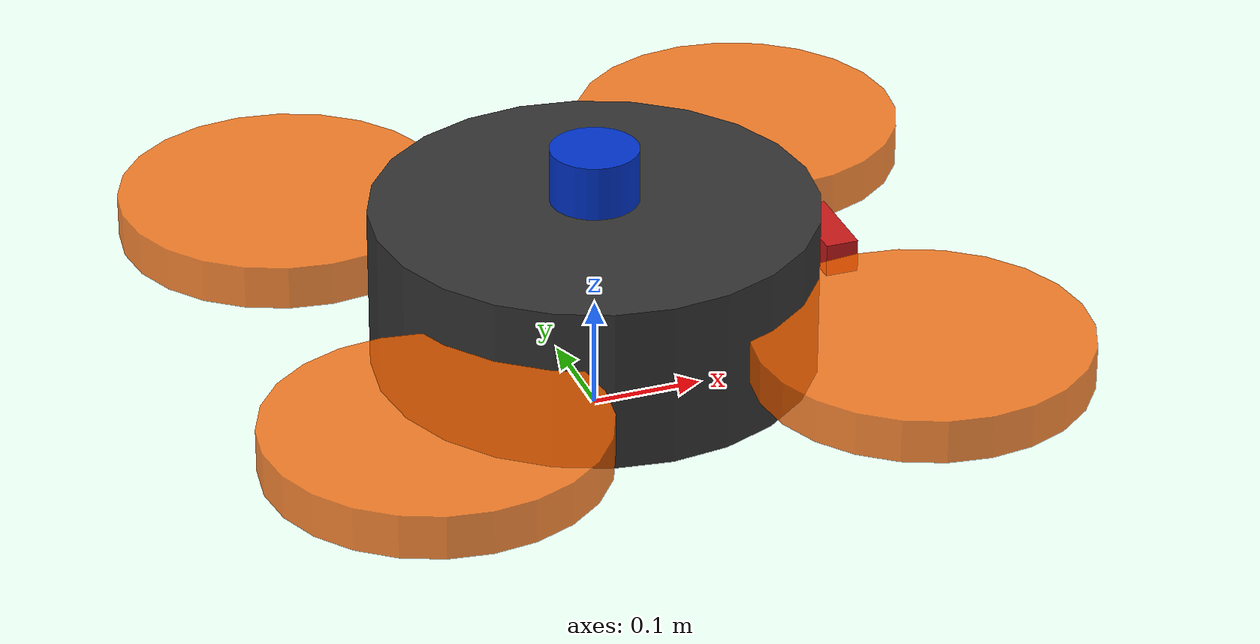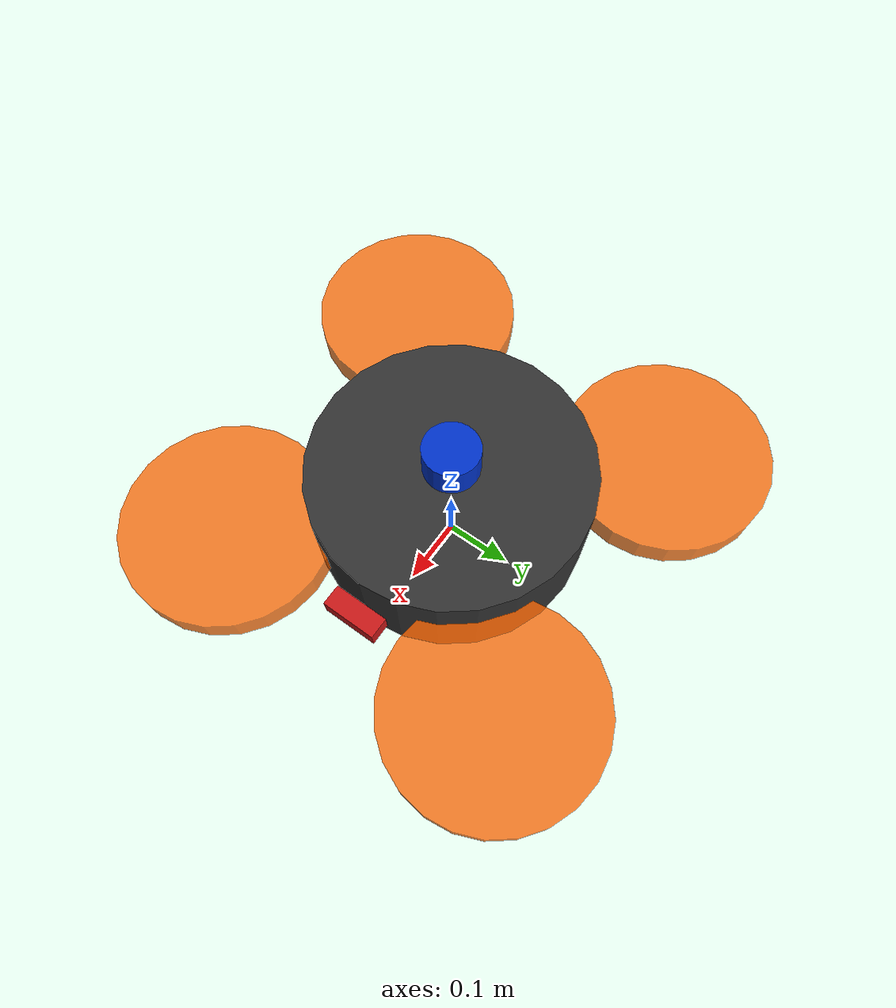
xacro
<?xml version="1.0"?>
<robot xmlns:xacro="http://www.ros.org/wiki/xacro" name="airmouse_drone">

  <xacro:property name="base_mass" value="1.8"/>
  <xacro:property name="base_width" value="0.4"/>
  <xacro:property name="base_height" value="0.15"/>
  <xacro:property name="guard_radius" value="0.15"/>

  <!-- Base Link -->
  <link name="base_footprint"/>

  <joint name="base_footprint_joint" type="fixed">
    <parent link="base_footprint"/>
    <child link="base_link"/>
    <origin xyz="0 0 ${base_height/2 + 0.05}" rpy="0 0 0"/>
  </joint>

  <link name="base_link">
    <inertial>
      <mass value="${base_mass}"/>
      <origin xyz="0 0 0" rpy="0 0 0"/>
      <inertia ixx="0.03" ixy="0.0" ixz="0.0" iyy="0.03" iyz="0.0" izz="0.05"/>
    </inertial>
    <visual>
      <origin xyz="0 0 0" rpy="0 0 0"/>
      <geometry>
        <cylinder radius="${base_width/2}" length="${base_height}"/>
      </geometry>
      <material name="dark_gray">
        <color rgba="0.2 0.2 0.2 1.0"/>
      </material>
    </visual>
    <collision>
      <origin xyz="0 0 0" rpy="0 0 0"/>
      <geometry>
        <cylinder radius="${base_width/2}" length="${base_height}"/>
      </geometry>
    </collision>
  </link>

  <!-- Protective Propeller Guards (Front-Left, Front-Right, Rear-Left, Rear-Right) -->
  <xacro:macro name="prop_guard" params="prefix x_reflect y_reflect">
    <link name="guard_${prefix}">
      <visual>
        <geometry>
          <cylinder radius="${guard_radius}" length="0.04"/>
        </geometry>
        <material name="orange">
          <color rgba="1.0 0.4 0.0 0.8"/>
        </material>
      </visual>
      <collision>
        <geometry>
          <cylinder radius="${guard_radius}" length="0.04"/>
        </geometry>
      </collision>
      <inertial>
        <mass value="0.05"/>
        <inertia ixx="0.0001" ixy="0" ixz="0" iyy="0.0001" iyz="0" izz="0.0002"/>
      </inertial>
    </link>
    <joint name="guard_${prefix}_joint" type="fixed">
      <parent link="base_link"/>
      <child link="guard_${prefix}"/>
      <origin xyz="${x_reflect * 0.22} ${y_reflect * 0.22} 0" rpy="0 0 0"/>
    </joint>
  </xacro:macro>

  <xacro:prop_guard prefix="fl" x_reflect="1" y_reflect="1"/>
  <xacro:prop_guard prefix="fr" x_reflect="1" y_reflect="-1"/>
  <xacro:prop_guard prefix="rl" x_reflect="-1" y_reflect="1"/>
  <xacro:prop_guard prefix="rr" x_reflect="-1" y_reflect="-1"/>

  <!-- 2D LiDAR Link & Joint -->
  <link name="lidar_link">
    <visual>
      <geometry>
        <cylinder radius="0.04" length="0.05"/>
      </geometry>
      <material name="blue">
        <color rgba="0.0 0.2 0.8 1.0"/>
      </material>
    </visual>
    <collision>
      <geometry>
        <cylinder radius="0.04" length="0.05"/>
      </geometry>
    </collision>
    <inertial>
      <mass value="0.1"/>
      <inertia ixx="0.0001" ixy="0" ixz="0" iyy="0.0001" iyz="0" izz="0.0001"/>
    </inertial>
  </link>

  <joint name="lidar_joint" type="fixed">
    <parent link="base_link"/>
    <child link="lidar_link"/>
    <origin xyz="0 0 ${base_height/2 + 0.03}" rpy="0 0 0"/>
  </joint>

  <!-- Front RGB-D Camera Link & Joint -->
  <link name="camera_link">
    <visual>
      <geometry>
        <box size="0.03 0.08 0.03"/>
      </geometry>
      <material name="red">
        <color rgba="0.8 0.1 0.1 1.0"/>
      </material>
    </visual>
    <collision>
      <geometry>
        <box size="0.03 0.08 0.03"/>
      </geometry>
    </collision>
    <inertial>
      <mass value="0.08"/>
      <inertia ixx="0.0001" ixy="0" ixz="0" iyy="0.0001" iyz="0" izz="0.0001"/>
    </inertial>
  </link>

  <joint name="camera_joint" type="fixed">
    <parent link="base_link"/>
    <child link="camera_link"/>
    <origin xyz="${base_width/2 + 0.02} 0 0" rpy="0 0 0"/>
  </joint>

  <link name="camera_optical_frame"/>
  <joint name="camera_optical_joint" type="fixed">
    <parent link="camera_link"/>
    <child link="camera_optical_frame"/>
    <origin xyz="0 0 0" rpy="-1.5707963 0 -1.5707963"/>
  </joint>

  <!-- IMU Link & Joint -->
  <link name="imu_link"/>
  <joint name="imu_joint" type="fixed">
    <parent link="base_link"/>
    <child link="imu_link"/>
    <origin xyz="0 0 0" rpy="0 0 0"/>
  </joint>

  <!-- Gazebo Sensors & Plugins -->
  <gazebo reference="lidar_link">
    <sensor name="airmouse_lidar" type="gpu_lidar">
      <update_rate>15</update_rate>
      <topic>/airmouse/scan</topic>
      <gz_frame_id>lidar_link</gz_frame_id>
      <lidar>
        <scan>
          <horizontal>
            <samples>360</samples>
            <resolution>1</resolution>
            <min_angle>-3.14159265</min_angle>
            <max_angle>3.14159265</max_angle>
          </horizontal>
        </scan>
        <range>
          <min>0.1</min>
          <max>15.0</max>
          <resolution>0.01</resolution>
        </range>
      </lidar>
      <always_on>1</always_on>
      <visualize>true</visualize>
    </sensor>
  </gazebo>

  <gazebo reference="camera_link">
    <sensor name="airmouse_camera" type="rgbd_camera">
      <update_rate>30</update_rate>
      <topic>/airmouse/camera</topic>
      <gz_frame_id>camera_optical_frame</gz_frame_id>
      <camera>
        <horizontal_fov>1.3962634</horizontal_fov>
        <image>
          <width>640</width>
          <height>480</height>
          <format>R8G8B8</format>
        </image>
        <clip>
          <near>0.1</near>
          <far>10.0</far>
        </clip>
      </camera>
      <always_on>1</always_on>
      <visualize>true</visualize>
    </sensor>
  </gazebo>

  <gazebo reference="imu_link">
    <sensor name="airmouse_imu" type="imu">
      <update_rate>100</update_rate>
      <topic>/airmouse/imu</topic>
      <gz_frame_id>imu_link</gz_frame_id>
      <always_on>1</always_on>
    </sensor>
  </gazebo>

  <gazebo>
    <plugin
      filename="gz-sim-multicopter-control-system"
      name="gz::sim::systems::MulticopterVelocityControl">
      <robotNamespace>airmouse</robotNamespace>
      <commandSubTopic>cmd_vel</commandSubTopic>
      <enableSubTopic>enable</enableSubTopic>
      <comLinkName>base_link</comLinkName>
      <velocityGain>2.7 2.7 2.7</velocityGain>
      <attitudeGain>2.0 2.0 2.0</attitudeGain>
      <angularRateGain>0.4 0.4 0.4</angularRateGain>
      <maximumLinearVelocity>3.0 3.0 3.0</maximumLinearVelocity>
      <maximumAngularVelocity>3.0 3.0 3.0</maximumAngularVelocity>
    </plugin>
  </gazebo>

</robot>
